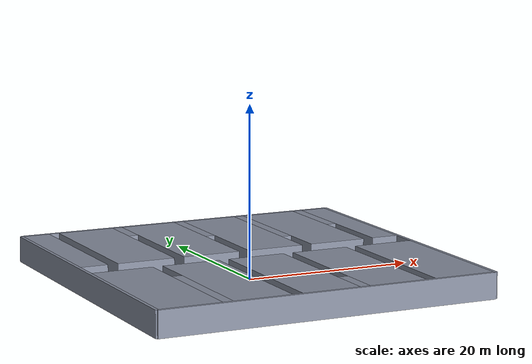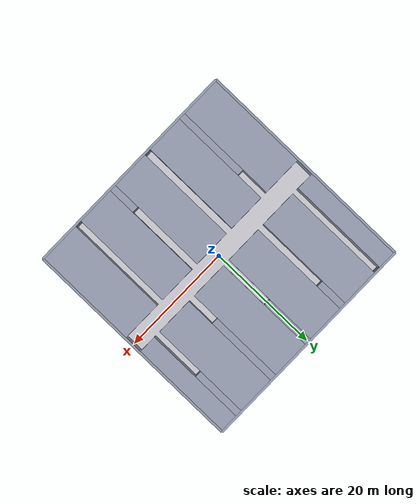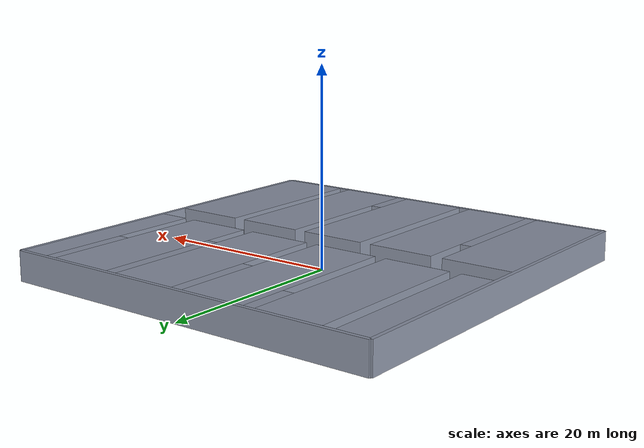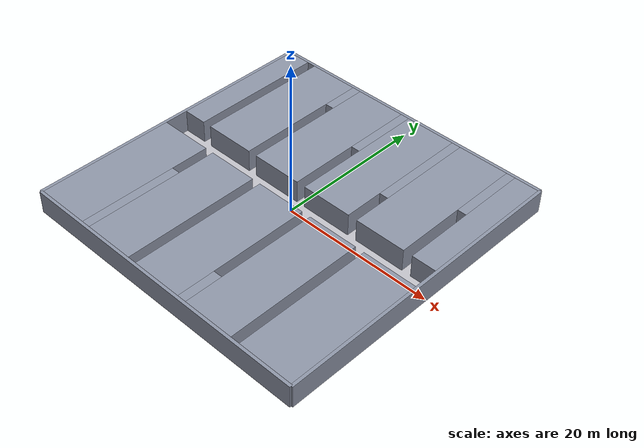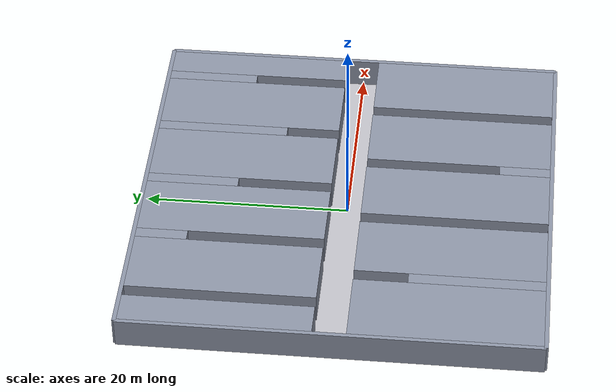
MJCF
<mujoco model="comb_indoor">
  <option timestep="0.01" gravity="0 0 -9.81"/>

  <!-- Default free-camera framing, as in the other scenes: the passive viewer
       otherwise opens at floor level. -->
  <statistic center="0 0 1" extent="36"/>
  <visual>
    <headlight ambient="0.5 0.5 0.5" diffuse="0.45 0.45 0.45" specular="0 0 0"/>
    <global azimuth="90" elevation="-75"/>
  </visual>

  <worldbody>
    <!-- Directional lights: no positional falloff, so a 40 m floor has no
         hotspot. Lights never collide — no effect on ray-casts or the map. -->
    <light name="key" directional="true" pos="0 0 20" dir="0.2 0.3 -1"
           diffuse="0.55 0.55 0.55" specular="0 0 0"/>
    <light name="fill" directional="true" pos="12 12 20" dir="-0.5 -0.5 -1"
           diffuse="0.35 0.35 0.35" specular="0 0 0"/>

    <!-- Floor -->
    <geom name="floor" type="plane" size="20 20 0.05"
          rgba="0.75 0.75 0.78 1.0"/>

    <!-- Perimeter (generated; see the header). Straddles the floor edge, so
         the grid's outermost ring of cells is wall. -->
    <geom name="wall_north" type="box" pos="0 20 1.5"
          size="20 0.2 1.5" rgba="0.55 0.58 0.65 1.0"/>
    <geom name="wall_south" type="box" pos="0 -20 1.5"
          size="20 0.2 1.5" rgba="0.55 0.58 0.65 1.0"/>
    <geom name="wall_east" type="box" pos="20 0 1.5"
          size="0.2 20 1.5" rgba="0.55 0.58 0.65 1.0"/>
    <geom name="wall_west" type="box" pos="-20 0 1.5"
          size="0.2 20 1.5" rgba="0.55 0.58 0.65 1.0"/>

    <!-- North fill: the slab between the spine (y = 1.6) and the perimeter
         (y = 19.8), minus the rib slots. Its south face is the spine's north
         wall; the gaps in it are the rib mouths. -->
    <geom name="fill_n_1" type="box" pos="-18.2 10.7 1.5"
          size="1.6 9.1 1.5" rgba="0.55 0.58 0.65 1.0"/>
    <geom name="fill_n_2" type="box" pos="-12 10.7 1.5"
          size="3.4 9.1 1.5" rgba="0.55 0.58 0.65 1.0"/>
    <geom name="fill_n_3" type="box" pos="-4 10.7 1.5"
          size="3.4 9.1 1.5" rgba="0.55 0.58 0.65 1.0"/>
    <geom name="fill_n_4" type="box" pos="4 10.7 1.5"
          size="3.4 9.1 1.5" rgba="0.55 0.58 0.65 1.0"/>
    <geom name="fill_n_5" type="box" pos="12 10.7 1.5"
          size="3.4 9.1 1.5" rgba="0.55 0.58 0.65 1.0"/>
    <geom name="fill_n_6" type="box" pos="18.2 10.7 1.5"
          size="1.6 9.1 1.5" rgba="0.55 0.58 0.65 1.0"/>

    <!-- North caps: solid beyond a rib's tip. The rib at x = -16 runs the
         full 18.2 m to the perimeter and needs none. -->
    <geom name="cap_n_2" type="box" pos="-8 17.3 1.5"
          size="0.6 2.5 1.5" rgba="0.55 0.58 0.65 1.0"/>
    <geom name="cap_n_3" type="box" pos="0 15.3 1.5"
          size="0.6 4.5 1.5" rgba="0.55 0.58 0.65 1.0"/>
    <geom name="cap_n_4" type="box" pos="8 13.3 1.5"
          size="0.6 6.5 1.5" rgba="0.55 0.58 0.65 1.0"/>
    <geom name="cap_n_5" type="box" pos="16 15.3 1.5"
          size="0.6 4.5 1.5" rgba="0.55 0.58 0.65 1.0"/>

    <!-- South fill: the same slab mirrored about the spine. -->
    <geom name="fill_s_1" type="box" pos="-16.2 -10.7 1.5"
          size="3.6 9.1 1.5" rgba="0.55 0.58 0.65 1.0"/>
    <geom name="fill_s_2" type="box" pos="-8 -10.7 1.5"
          size="3.4 9.1 1.5" rgba="0.55 0.58 0.65 1.0"/>
    <geom name="fill_s_3" type="box" pos="0 -10.7 1.5"
          size="3.4 9.1 1.5" rgba="0.55 0.58 0.65 1.0"/>
    <geom name="fill_s_4" type="box" pos="8 -10.7 1.5"
          size="3.4 9.1 1.5" rgba="0.55 0.58 0.65 1.0"/>
    <geom name="fill_s_5" type="box" pos="16.2 -10.7 1.5"
          size="3.6 9.1 1.5" rgba="0.55 0.58 0.65 1.0"/>

    <!-- South caps. The ribs at x = -4 and x = 12 run the full depth. -->
    <geom name="cap_s_1" type="box" pos="-12 -13.3 1.5"
          size="0.6 6.5 1.5" rgba="0.55 0.58 0.65 1.0"/>
    <geom name="cap_s_3" type="box" pos="4 -17.3 1.5"
          size="0.6 2.5 1.5" rgba="0.55 0.58 0.65 1.0"/>
  </worldbody>
</mujoco>
